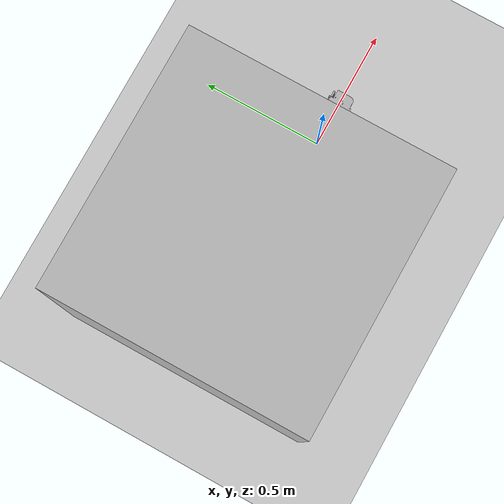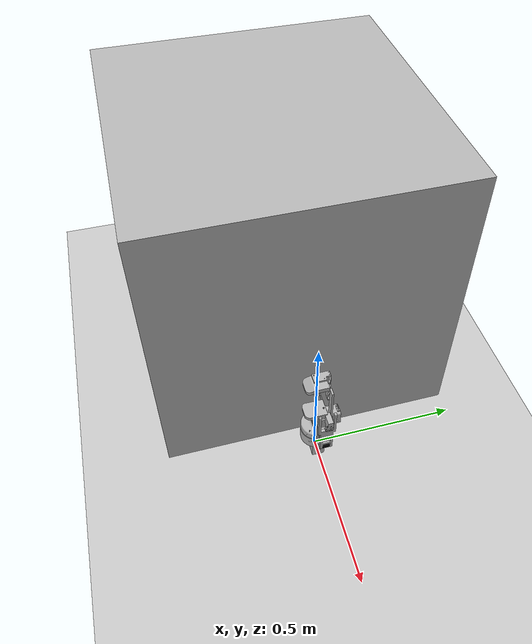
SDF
<?xml·version='1.0'?>
<sdf version='1.6'>
 <world name='default'>
  <include>
    <uri>model://sdf/sun</uri>
    <pose frame=''>0 0 10 0 0 0</pose>
  </include>
  <include>
    <uri>model://sdf/ground_plane</uri>
    <pose frame=''>0 0 0 0 0 0</pose>
  </include>
  <include>
     <uri>model://sdf/target</uri>
     <pose frame=''>-0.57 0 0.5 0 -0 0</pose>
  </include>

  <!--model name="rcm_1_5"-->
   <include>
     <uri>model://sdf/rcm_1_5</uri>
     <pose frame=''>0 0 0 0 0 0</pose>
   </include>

 </world>
</sdf>

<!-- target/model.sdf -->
<sdf version='1.6'>
  <model name='target'>
    <link name='link'>
      <inertial>
        <mass>1</mass>
        <inertia>
          <ixx>0.166667</ixx>
          <ixy>0</ixy>
          <ixz>0</ixz>
          <iyy>0.166667</iyy>
          <iyz>0</iyz>
          <izz>0.166667</izz>
        </inertia>
        <pose frame=''>0 0 0 0 -0 0</pose>
      </inertial>
      <self_collide>1</self_collide>
      <enable_wind>0</enable_wind>
      <kinematic>1</kinematic>
      <pose frame=''>0 0 0 0 -0 0</pose>
      <gravity>1</gravity>
      <visual name='visual'>
        <geometry>
          <box>
            <size>1 1 1</size>
          </box>
        </geometry>
        <material>
          <script>
            <name>Target/Image</name>
              <uri>/home/tiger/RCM_ws/src/rcm/rcm/materials/scripts</uri>
              <uri>/home/tiger/RCM_ws/src/rcm/rcm/materials/textures</uri>
          </script>
          <shader type='vertex'>
            <normal_map>__default__</normal_map>
          </shader>
        </material>
        <pose frame=''>0 0 0 0 -0 0</pose>
        <transparency>0</transparency>
        <cast_shadows>1</cast_shadows>
      </visual>
      <collision name='collision'>
        <laser_retro>0</laser_retro>
        <max_contacts>10</max_contacts>
        <pose frame=''>0 0 0 0 -0 0</pose>
        <geometry>
          <box>
            <size>1 1 1</size>
          </box>
        </geometry>
        <surface>
          <friction>
            <ode>
              <mu>1</mu>
              <mu2>1</mu2>
              <fdir1>0 0 0</fdir1>
              <slip1>0</slip1>
              <slip2>0</slip2>
            </ode>
            <torsional>
              <coefficient>1</coefficient>
              <patch_radius>0</patch_radius>
              <surface_radius>0</surface_radius>
              <use_patch_radius>1</use_patch_radius>
              <ode>
                <slip>0</slip>
              </ode>
            </torsional>
          </friction>
          <bounce>
            <restitution_coefficient>0</restitution_coefficient>
            <threshold>1e+06</threshold>
          </bounce>
          <contact>
            <collide_without_contact>0</collide_without_contact>
            <collide_without_contact_bitmask>1</collide_without_contact_bitmask>
            <collide_bitmask>1</collide_bitmask>
            <ode>
              <soft_cfm>0</soft_cfm>
              <soft_erp>0.2</soft_erp>
              <kp>1e+13</kp>
              <kd>1</kd>
              <max_vel>0.01</max_vel>
              <min_depth>0</min_depth>
            </ode>
            <bullet>
              <split_impulse>1</split_impulse>
              <split_impulse_penetration_threshold>-0.01</split_impulse_penetration_threshold>
              <soft_cfm>0</soft_cfm>
              <soft_erp>0.2</soft_erp>
              <kp>1e+13</kp>
              <kd>1</kd>
            </bullet>
          </contact>
        </surface>
      </collision>
    </link>
    <static>0</static>
    <allow_auto_disable>1</allow_auto_disable>
  </model>
</sdf>

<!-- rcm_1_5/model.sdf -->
<sdf version='1.6'>
  <model name='rcm_1_5'>
    <link name='base_link'>
      <pose frame=''>0 0 0 0 -0 0</pose>
      <inertial>
        <pose frame=''>-2e-06 -0.000157 0.053136 0 -0 0</pose>
        <mass>0.54888</mass>
        <inertia>
          <ixx>0.00051158</ixx>
          <ixy>1.3334e-09</ixy>
          <ixz>-1.4584e-09</ixz>
          <iyy>0.00064416</iyy>
          <iyz>-1.873e-09</iyz>
          <izz>0.00063919</izz>
        </inertia>
      </inertial>
      <self_collide>1</self_collide>
      <enable_wind>0</enable_wind>
      <kinematic>1</kinematic>
      <visual name='base_link_visual'>
        <pose frame=''>0 0 0 0 -0 0</pose>
        <geometry>
          <mesh>
            <scale>1 1 1</scale>
            <uri>model://meshes/base_link.STL</uri>
          </mesh>
        </geometry>
        <transparency>0</transparency>
        <cast_shadows>1</cast_shadows>
        <material>
          <emissive>0 0 0 1</emissive>
        </material>
      </visual>
      <collision name='base_link_collision'>
        <laser_retro>0</laser_retro>
        <max_contacts>10</max_contacts>
        <pose frame=''>0 0 0 0 -0 0</pose>
        <geometry>
          <mesh>
            <uri>model://meshes/base_link.STL</uri>
            <scale>1 1 1</scale>
          </mesh>
        </geometry>
        <surface>
          <friction>
            <ode>
              <mu>1</mu>
              <mu2>1</mu2>
              <fdir1>0 0 0</fdir1>
              <slip1>0</slip1>
              <slip2>0</slip2>
            </ode>
            <torsional>
              <coefficient>1</coefficient>
              <patch_radius>0</patch_radius>
              <surface_radius>0</surface_radius>
              <use_patch_radius>1</use_patch_radius>
              <ode>
                <slip>0</slip>
              </ode>
            </torsional>
          </friction>
          <bounce>
            <restitution_coefficient>0</restitution_coefficient>
            <threshold>1e+06</threshold>
          </bounce>
          <contact>
            <collide_without_contact>0</collide_without_contact>
            <collide_without_contact_bitmask>1</collide_without_contact_bitmask>
            <collide_bitmask>1</collide_bitmask>
            <ode>
              <soft_cfm>0</soft_cfm>
              <soft_erp>0.2</soft_erp>
              <kp>1e+13</kp>
              <kd>1</kd>
              <max_vel>0.01</max_vel>
              <min_depth>0</min_depth>
            </ode>
            <bullet>
              <split_impulse>1</split_impulse>
              <split_impulse_penetration_threshold>-0.01</split_impulse_penetration_threshold>
              <soft_cfm>0</soft_cfm>
              <soft_erp>0.2</soft_erp>
              <kp>1e+13</kp>
              <kd>1</kd>
            </bullet>
          </contact>
        </surface>
      </collision>
    </link>
    <link name='Link1'>
      <pose frame=''>0 0 0.098695 0 -0 0</pose>
      <inertial>
        <pose frame=''>-1e-06 0.017456 0.033231 0 -0 0</pose>
        <mass>0.34082</mass>
        <inertia>
          <ixx>0.00024163</ixx>
          <ixy>-0</ixy>
          <ixz>-0</ixz>
          <iyy>0.00025274</iyy>
          <iyz>2.92e-06</iyz>
          <izz>0.00025121</izz>
        </inertia>
      </inertial>
      <self_collide>1</self_collide>
      <enable_wind>0</enable_wind>
      <kinematic>0</kinematic>
      <gravity>1</gravity>
      <visual name='Link1_visual'>
        <pose frame=''>0 0 0 0 -0 0</pose>
        <geometry>
          <mesh>
            <scale>1 1 1</scale>
            <uri>model://meshes/Link1.STL</uri>
          </mesh>
        </geometry>
        <transparency>0</transparency>
        <cast_shadows>1</cast_shadows>
        <material>
          <emissive>0 0 0 1</emissive>
          <shader type='vertex'>
            <normal_map>__default__</normal_map>
          </shader>
        </material>
      </visual>
      <collision name='Link1_collision'>
        <laser_retro>0</laser_retro>
        <max_contacts>10</max_contacts>
        <pose frame=''>0 0 0 0 -0 0</pose>
        <geometry>
          <mesh>
            <uri>model://meshes/Link1.STL</uri>
            <scale>1 1 1</scale>
          </mesh>
        </geometry>
        <surface>
          <friction>
            <ode>
              <mu>1</mu>
              <mu2>1</mu2>
              <fdir1>0 0 0</fdir1>
              <slip1>0</slip1>
              <slip2>0</slip2>
            </ode>
            <torsional>
              <coefficient>1</coefficient>
              <patch_radius>0</patch_radius>
              <surface_radius>0</surface_radius>
              <use_patch_radius>1</use_patch_radius>
              <ode>
                <slip>0</slip>
              </ode>
            </torsional>
          </friction>
          <bounce>
            <restitution_coefficient>0</restitution_coefficient>
            <threshold>1e+06</threshold>
          </bounce>
          <contact>
            <collide_without_contact>0</collide_without_contact>
            <collide_without_contact_bitmask>1</collide_without_contact_bitmask>
            <collide_bitmask>1</collide_bitmask>
            <ode>
              <soft_cfm>0</soft_cfm>
              <soft_erp>0.2</soft_erp>
              <kp>1e+13</kp>
              <kd>1</kd>
              <max_vel>0.01</max_vel>
              <min_depth>0</min_depth>
            </ode>
            <bullet>
              <split_impulse>1</split_impulse>
              <split_impulse_penetration_threshold>-0.01</split_impulse_penetration_threshold>
              <soft_cfm>0</soft_cfm>
              <soft_erp>0.2</soft_erp>
              <kp>1e+13</kp>
              <kd>1</kd>
            </bullet>
          </contact>
        </surface>
      </collision>
    </link>
    <link name='Link2_1'>
      <pose frame=''>0 0 0.154249 -1.5708 0 0</pose>
      <inertial>
        <pose frame=''>0.055013 0 0.000347 0 -0 0</pose>
        <mass>0.0214</mass>
        <inertia>
          <ixx>0</ixx>
          <ixy>0</ixy>
          <ixz>0</ixz>
          <iyy>0</iyy>
          <iyz>0</iyz>
          <izz>0</izz>
        </inertia>
      </inertial>
      <self_collide>1</self_collide>
      <enable_wind>0</enable_wind>
      <kinematic>0</kinematic>
      <gravity>1</gravity>
      <visual name='Link2_1_visual'>
        <pose frame=''>0 0 0 0 -0 0</pose>
        <geometry>
          <mesh>
            <scale>1 1 1</scale>
            <uri>model://meshes/Link2_1.STL</uri>
          </mesh>
        </geometry>
        <transparency>0</transparency>
        <cast_shadows>1</cast_shadows>
        <material>
          <emissive>0 0 0 1</emissive>
          <shader type='vertex'>
            <normal_map>__default__</normal_map>
          </shader>
          <script>
            <name>ModelPreview_1::Link2_1::Link2_1_visual_MATERIAL_</name>
            <uri>__default__</uri>
          </script>
          <ambient>0 0 0 1</ambient>
          <diffuse>0 0 0 1</diffuse>
          <specular>0 0 0 1</specular>
        </material>
      </visual>
      <collision name='Link2_1_collision'>
        <laser_retro>0</laser_retro>
        <max_contacts>10</max_contacts>
        <pose frame=''>0 0 0 0 -0 0</pose>
        <geometry>
          <mesh>
            <uri>model://meshes/Link2_1.STL</uri>
            <scale>1 1 1</scale>
          </mesh>
        </geometry>
        <surface>
          <friction>
            <ode>
              <mu>1</mu>
              <mu2>1</mu2>
              <fdir1>0 0 0</fdir1>
              <slip1>0</slip1>
              <slip2>0</slip2>
            </ode>
            <torsional>
              <coefficient>1</coefficient>
              <patch_radius>0</patch_radius>
              <surface_radius>0</surface_radius>
              <use_patch_radius>1</use_patch_radius>
              <ode>
                <slip>0</slip>
              </ode>
            </torsional>
          </friction>
          <bounce>
            <restitution_coefficient>0</restitution_coefficient>
            <threshold>1e+06</threshold>
          </bounce>
          <contact>
            <collide_without_contact>0</collide_without_contact>
            <collide_without_contact_bitmask>1</collide_without_contact_bitmask>
            <collide_bitmask>1</collide_bitmask>
            <ode>
              <soft_cfm>0</soft_cfm>
              <soft_erp>0.2</soft_erp>
              <kp>1e+13</kp>
              <kd>1</kd>
              <max_vel>0.01</max_vel>
              <min_depth>0</min_depth>
            </ode>
            <bullet>
              <split_impulse>1</split_impulse>
              <split_impulse_penetration_threshold>-0.01</split_impulse_penetration_threshold>
              <soft_cfm>0</soft_cfm>
              <soft_erp>0.2</soft_erp>
              <kp>1e+13</kp>
              <kd>1</kd>
            </bullet>
          </contact>
        </surface>
      </collision>
    </link>
    <link name='Link2_2'>
      <pose frame=''>0 0 0.194249 -1.5708 0 0</pose>
      <inertial>
        <pose frame=''>0.061889 0 -0.0001 0 -0 0</pose>
        <mass>0.0214</mass>
        <inertia>
          <ixx>4.29e-06</ixx>
          <ixy>0</ixy>
          <ixz>0</ixz>
          <iyy>4.646e-05</iyy>
          <iyz>0</iyz>
          <izz>4.364e-05</izz>
        </inertia>
      </inertial>
      <self_collide>1</self_collide>
      <enable_wind>0</enable_wind>
      <kinematic>0</kinematic>
      <gravity>1</gravity>
      <visual name='Link2_2_visual'>
        <pose frame=''>0 0 0 0 -0 0</pose>
        <geometry>
          <mesh>
            <scale>1 1 1</scale>
            <uri>model://meshes/Link2_2.STL</uri>
          </mesh>
        </geometry>
        <transparency>0</transparency>
        <cast_shadows>1</cast_shadows>
        <material>
          <emissive>0 0 0 1</emissive>
          <shader type='vertex'>
            <normal_map>__default__</normal_map>
          </shader>
        </material>
      </visual>
      <collision name='Link2_2_collision'>
        <laser_retro>0</laser_retro>
        <max_contacts>10</max_contacts>
        <pose frame=''>0 0 0 0 -0 0</pose>
        <geometry>
          <mesh>
            <uri>model://meshes/Link2_2.STL</uri>
            <scale>1 1 1</scale>
          </mesh>
        </geometry>
        <surface>
          <friction>
            <ode>
              <mu>1</mu>
              <mu2>1</mu2>
              <fdir1>0 0 0</fdir1>
              <slip1>0</slip1>
              <slip2>0</slip2>
            </ode>
            <torsional>
              <coefficient>1</coefficient>
              <patch_radius>0</patch_radius>
              <surface_radius>0</surface_radius>
              <use_patch_radius>1</use_patch_radius>
              <ode>
                <slip>0</slip>
              </ode>
            </torsional>
          </friction>
          <bounce>
            <restitution_coefficient>0</restitution_coefficient>
            <threshold>1e+06</threshold>
          </bounce>
          <contact>
            <collide_without_contact>0</collide_without_contact>
            <collide_without_contact_bitmask>1</collide_without_contact_bitmask>
            <collide_bitmask>1</collide_bitmask>
            <ode>
              <soft_cfm>0</soft_cfm>
              <soft_erp>0.2</soft_erp>
              <kp>1e+13</kp>
              <kd>1</kd>
              <max_vel>0.01</max_vel>
              <min_depth>0</min_depth>
            </ode>
            <bullet>
              <split_impulse>1</split_impulse>
              <split_impulse_penetration_threshold>-0.01</split_impulse_penetration_threshold>
              <soft_cfm>0</soft_cfm>
              <soft_erp>0.2</soft_erp>
              <kp>1e+13</kp>
              <kd>1</kd>
            </bullet>
          </contact>
        </surface>
      </collision>
    </link>
    <link name='Link3_1'>
      <pose frame=''>0.072 0 0.154249 2.31621 -1.57079 2.39617</pose>
      <inertial>
        <pose frame=''>0.078951 0 0 0 -0 0</pose>
        <mass>0.02395</mass>
        <inertia>
          <ixx>1.47e-05</ixx>
          <ixy>0</ixy>
          <ixz>0</ixz>
          <iyy>0.00010124</iyy>
          <iyz>0</iyz>
          <izz>8.727e-05</izz>
        </inertia>
      </inertial>
      <self_collide>1</self_collide>
      <enable_wind>0</enable_wind>
      <kinematic>0</kinematic>
      <gravity>1</gravity>
      <visual name='Link3_1_visual'>
        <pose frame=''>0 0 0 0 -0 0</pose>
        <geometry>
          <mesh>
            <scale>1 1 1</scale>
            <uri>model://meshes/Link3_1.STL</uri>
          </mesh>
        </geometry>
        <transparency>0</transparency>
        <cast_shadows>1</cast_shadows>
        <material>
          <emissive>0 0 0 1</emissive>
          <shader type='vertex'>
            <normal_map>__default__</normal_map>
          </shader>
        </material>
      </visual>
      <collision name='Link3_1_collision'>
        <laser_retro>0</laser_retro>
        <max_contacts>10</max_contacts>
        <pose frame=''>0 0 0 0 -0 0</pose>
        <geometry>
          <mesh>
            <uri>model://meshes/Link3_1.STL</uri>
            <scale>1 1 1</scale>
          </mesh>
        </geometry>
        <surface>
          <friction>
            <ode>
              <mu>1</mu>
              <mu2>1</mu2>
              <fdir1>0 0 0</fdir1>
              <slip1>0</slip1>
              <slip2>0</slip2>
            </ode>
            <torsional>
              <coefficient>1</coefficient>
              <patch_radius>0</patch_radius>
              <surface_radius>0</surface_radius>
              <use_patch_radius>1</use_patch_radius>
              <ode>
                <slip>0</slip>
              </ode>
            </torsional>
          </friction>
          <bounce>
            <restitution_coefficient>0</restitution_coefficient>
            <threshold>1e+06</threshold>
          </bounce>
          <contact>
            <collide_without_contact>0</collide_without_contact>
            <collide_without_contact_bitmask>1</collide_without_contact_bitmask>
            <collide_bitmask>1</collide_bitmask>
            <ode>
              <soft_cfm>0</soft_cfm>
              <soft_erp>0.2</soft_erp>
              <kp>1e+13</kp>
              <kd>1</kd>
              <max_vel>0.01</max_vel>
              <min_depth>0</min_depth>
            </ode>
            <bullet>
              <split_impulse>1</split_impulse>
              <split_impulse_penetration_threshold>-0.01</split_impulse_penetration_threshold>
              <soft_cfm>0</soft_cfm>
              <soft_erp>0.2</soft_erp>
              <kp>1e+13</kp>
              <kd>1</kd>
            </bullet>
          </contact>
        </surface>
      </collision>
    </link>
    <link name='Link3_2'>
      <pose frame=''>0.112 0 0.154249 2.31621 -1.57079 2.39617</pose>
      <inertial>
        <pose frame=''>0.078951 0 0 0 -0 0</pose>
        <mass>0.02395</mass>
        <inertia>
          <ixx>1.47e-05</ixx>
          <ixy>0</ixy>
          <ixz>0</ixz>
          <iyy>0.00010124</iyy>
          <iyz>0</iyz>
          <izz>8.727e-05</izz>
        </inertia>
      </inertial>
      <self_collide>1</self_collide>
      <enable_wind>0</enable_wind>
      <kinematic>0</kinematic>
      <gravity>1</gravity>
      <visual name='Link3_2_visual'>
        <pose frame=''>0 0 0 0 -0 0</pose>
        <geometry>
          <mesh>
            <scale>1 1 1</scale>
            <uri>model://meshes/Link3_2.STL</uri>
          </mesh>
        </geometry>
        <transparency>0</transparency>
        <cast_shadows>1</cast_shadows>
        <material>
          <emissive>0 0 0 1</emissive>
          <shader type='vertex'>
            <normal_map>__default__</normal_map>
          </shader>
        </material>
      </visual>
      <collision name='Link3_2_collision'>
        <laser_retro>0</laser_retro>
        <max_contacts>10</max_contacts>
        <pose frame=''>0 0 0 0 -0 0</pose>
        <geometry>
          <mesh>
            <uri>model://meshes/Link3_2.STL</uri>
            <scale>1 1 1</scale>
          </mesh>
        </geometry>
        <surface>
          <friction>
            <ode>
              <mu>1</mu>
              <mu2>1</mu2>
              <fdir1>0 0 0</fdir1>
              <slip1>0</slip1>
              <slip2>0</slip2>
            </ode>
            <torsional>
              <coefficient>1</coefficient>
              <patch_radius>0</patch_radius>
              <surface_radius>0</surface_radius>
              <use_patch_radius>1</use_patch_radius>
              <ode>
                <slip>0</slip>
              </ode>
            </torsional>
          </friction>
          <bounce>
            <restitution_coefficient>0</restitution_coefficient>
            <threshold>1e+06</threshold>
          </bounce>
          <contact>
            <collide_without_contact>0</collide_without_contact>
            <collide_without_contact_bitmask>1</collide_without_contact_bitmask>
            <collide_bitmask>1</collide_bitmask>
            <ode>
              <soft_cfm>0</soft_cfm>
              <soft_erp>0.2</soft_erp>
              <kp>1e+13</kp>
              <kd>1</kd>
              <max_vel>0.01</max_vel>
              <min_depth>0</min_depth>
            </ode>
            <bullet>
              <split_impulse>1</split_impulse>
              <split_impulse_penetration_threshold>-0.01</split_impulse_penetration_threshold>
              <soft_cfm>0</soft_cfm>
              <soft_erp>0.2</soft_erp>
              <kp>1e+13</kp>
              <kd>1</kd>
            </bullet>
          </contact>
        </surface>
      </collision>
    </link>
    <link name='Link_E'>
      <pose frame=''>0.127 0 0.284749 -3.14148 -1.53809 3.14148</pose>
      <inertial>
        <pose frame=''>0.028599 0.000461 0.00729 0 -0 0</pose>
        <mass>0.047866</mass>
        <inertia>
          <ixx>2.08e-06</ixx>
          <ixy>1e-08</ixy>
          <ixz>0</ixz>
          <iyy>2.79e-06</iyy>
          <iyz>1e-08</iyz>
          <izz>1.87e-06</izz>
        </inertia>
      </inertial>
      <self_collide>1</self_collide>
      <enable_wind>0</enable_wind>
      <kinematic>0</kinematic>
      <gravity>1</gravity>
      <visual name='Link_E_visual'>
        <pose frame=''>0 0 0 0 -0 0</pose>
        <geometry>
          <mesh>
            <scale>1 1 1</scale>
            <uri>model://meshes/Link_E.STL</uri>
          </mesh>
        </geometry>
        <transparency>0</transparency>
        <cast_shadows>1</cast_shadows>
        <material>
          <emissive>0 0 0 1</emissive>
          <shader type='vertex'>
            <normal_map>__default__</normal_map>
          </shader>
        </material>
      </visual>
      <collision name='Link_E_collision'>
        <laser_retro>0</laser_retro>
        <max_contacts>10</max_contacts>
        <pose frame=''>0 0 0 0 -0 0</pose>
        <geometry>
          <mesh>
            <uri>model://meshes/Link_E.STL</uri>
            <scale>1 1 1</scale>
          </mesh>
        </geometry>
        <surface>
          <friction>
            <ode>
              <mu>1</mu>
              <mu2>1</mu2>
              <fdir1>0 0 0</fdir1>
              <slip1>0</slip1>
              <slip2>0</slip2>
            </ode>
            <torsional>
              <coefficient>1</coefficient>
              <patch_radius>0</patch_radius>
              <surface_radius>0</surface_radius>
              <use_patch_radius>1</use_patch_radius>
              <ode>
                <slip>0</slip>
              </ode>
            </torsional>
          </friction>
          <bounce>
            <restitution_coefficient>0</restitution_coefficient>
            <threshold>1e+06</threshold>
          </bounce>
          <contact>
            <collide_without_contact>0</collide_without_contact>
            <collide_without_contact_bitmask>1</collide_without_contact_bitmask>
            <collide_bitmask>1</collide_bitmask>
            <ode>
              <soft_cfm>0</soft_cfm>
              <soft_erp>0.2</soft_erp>
              <kp>1e+13</kp>
              <kd>1</kd>
              <max_vel>0.01</max_vel>
              <min_depth>0</min_depth>
            </ode>
            <bullet>
              <split_impulse>1</split_impulse>
              <split_impulse_penetration_threshold>-0.01</split_impulse_penetration_threshold>
              <soft_cfm>0</soft_cfm>
              <soft_erp>0.2</soft_erp>
              <kp>1e+13</kp>
              <kd>1</kd>
            </bullet>
          </contact>
        </surface>
      </collision>
    </link>
    <link name='Link_ee'>
      <pose frame=''>0.111999 1e-06 0.321749 1.5708 7e-06 -3.14159</pose>
      <inertial>
        <pose frame=''>-0.001995 -0.022493 0.000504 0 -0 0</pose>
        <mass>0.276133</mass>
        <inertia>
          <ixx>1.741e-05</ixx>
          <ixy>0</ixy>
          <ixz>0</ixz>
          <iyy>9.606e-05</iyy>
          <iyz>0</iyz>
          <izz>9.407e-05</izz>
        </inertia>
      </inertial>
      <self_collide>1</self_collide>
      <enable_wind>0</enable_wind>
      <kinematic>0</kinematic>
      <gravity>1</gravity>
      <visual name='Link_ee_visual'>
        <pose frame=''>0 0 0 0 -0 0</pose>
        <geometry>
          <mesh>
            <scale>1 1 1</scale>
            <uri>model://meshes/Link_ee.STL</uri>
          </mesh>
        </geometry>
        <transparency>0</transparency>
        <cast_shadows>1</cast_shadows>
        <material>
          <emissive>0 0 0 1</emissive>
          <shader type='vertex'>
            <normal_map>__default__</normal_map>
          </shader>
        </material>
      </visual>
      <collision name='Link_ee_collision'>
        <laser_retro>0</laser_retro>
        <max_contacts>10</max_contacts>
        <pose frame=''>0 0 0 0 -0 0</pose>
        <geometry>
          <mesh>
            <uri>model://meshes/Link_ee.STL</uri>
            <scale>1 1 1</scale>
          </mesh>
        </geometry>
        <surface>
          <friction>
            <ode>
              <mu>1</mu>
              <mu2>1</mu2>
              <fdir1>0 0 0</fdir1>
              <slip1>0</slip1>
              <slip2>0</slip2>
            </ode>
            <torsional>
              <coefficient>1</coefficient>
              <patch_radius>0</patch_radius>
              <surface_radius>0</surface_radius>
              <use_patch_radius>1</use_patch_radius>
              <ode>
                <slip>0</slip>
              </ode>
            </torsional>
          </friction>
          <bounce>
            <restitution_coefficient>0</restitution_coefficient>
            <threshold>1e+06</threshold>
          </bounce>
          <contact>
            <collide_without_contact>0</collide_without_contact>
            <collide_without_contact_bitmask>1</collide_without_contact_bitmask>
            <collide_bitmask>1</collide_bitmask>
            <ode>
              <soft_cfm>0</soft_cfm>
              <soft_erp>0.2</soft_erp>
              <kp>1e+13</kp>
              <kd>1</kd>
              <max_vel>0.01</max_vel>
              <min_depth>0</min_depth>
            </ode>
            <bullet>
              <split_impulse>1</split_impulse>
              <split_impulse_penetration_threshold>-0.01</split_impulse_penetration_threshold>
              <soft_cfm>0</soft_cfm>
              <soft_erp>0.2</soft_erp>
              <kp>1e+13</kp>
              <kd>1</kd>
            </bullet>
          </contact>
        </surface>
      </collision>
      <sensor name='camera' type='depth'>
        <pose frame=''>0.083 0.016 0 -1.57 0 0</pose>
        <always_on>1</always_on>
        <update_rate>30</update_rate>
        <visualize>1</visualize>
        <camera name='__default__'>
          <horizontal_fov>2.32</horizontal_fov>
          <image>
            <width>1280</width>
            <height>720</height>
          </image>
          <clip>
            <near>0.01</near>
            <far>100</far>
          </clip>
          <depth_camera>
            <output>1</output>
          </depth_camera>
        </camera>
        <plugin name='camera_plugin' filename='libgazebo_ros_openni_kinect.so'>
          <baseline>0.2</baseline>
          <alwaysOn>1</alwaysOn>
          <updateRate>0.0</updateRate>
          <cameraName>camera_ir</cameraName>
          <imageTopicName>/camera/color/image_raw</imageTopicName>
          <cameraInfoTopicName>/camera/color/camera_info</cameraInfoTopicName>
          <depthImageTopicName>/camera/depth/image_raw</depthImageTopicName>
          <depthImageCameraInfoTopicName>/camera/depth/camera_info</depthImageCameraInfoTopicName>
          <pointCloudTopicName>/camera/depth/points</pointCloudTopicName>
          <frameName>camera_link</frameName>
          <pointCloudCutoff>0.01</pointCloudCutoff>
          <pointCloudCutoffMax>100</pointCloudCutoffMax>
          <distortionK1>0</distortionK1>
          <distortionK2>0</distortionK2>
          <distortionK3>0</distortionK3>
          <distortionT1>0</distortionT1>
          <distortionT2>0</distortionT2>
          <CxPrime>0</CxPrime>
          <Cx>0</Cx>
          <Cy>0</Cy>
          <focalLength>0</focalLength>
          <hackBaseline>0</hackBaseline>
        </plugin>
      </sensor>
  </link>
    <joint name='Link1_joint' type='revolute'>
      <parent>base_link</parent>
      <child>Link1</child>
      <pose frame=''>0 0 0 0 -0 0</pose>
      <axis>
        <xyz>0 0 1</xyz>
        <use_parent_model_frame>0</use_parent_model_frame>
        <limit>
          <lower>-3.14</lower>
          <upper>3.14</upper>
          <effort>10</effort>
          <velocity>10</velocity>
        </limit>
        <dynamics>
          <spring_reference>0</spring_reference>
          <spring_stiffness>0</spring_stiffness>
          <damping>0</damping>
          <friction>0</friction>
        </dynamics>
      </axis>
      <physics>
        <ode>
          <limit>
            <cfm>0</cfm>
            <erp>0.2</erp>
          </limit>
          <suspension>
            <cfm>0</cfm>
            <erp>0.2</erp>
          </suspension>
        </ode>
      </physics>
    </joint>
    <joint name='Link2_1_joint' type='revolute'>
      <parent>Link1</parent>
      <child>Link2_1</child>
      <pose frame=''>0 0 0 0 -0 0</pose>
      <axis>
        <xyz>0 0 1</xyz>
        <use_parent_model_frame>0</use_parent_model_frame>
        <limit>
          <lower>-0.43</lower>
          <upper>0.43</upper>
          <effort>10</effort>
          <velocity>10</velocity>
        </limit>
        <dynamics>
          <spring_reference>0</spring_reference>
          <spring_stiffness>0</spring_stiffness>
          <damping>0</damping>
          <friction>0</friction>
        </dynamics>
      </axis>
      <physics>
        <ode>
          <limit>
            <cfm>0</cfm>
            <erp>0.2</erp>
          </limit>
          <suspension>
            <cfm>0</cfm>
            <erp>0.2</erp>
          </suspension>
        </ode>
      </physics>
    </joint>
    <joint name='Link2_2_joint' type='revolute'>
      <parent>Link1</parent>
      <child>Link2_2</child>
      <pose frame=''>0 0 0 0 -0 0</pose>
      <axis>
        <xyz>0 0 1</xyz>
        <use_parent_model_frame>0</use_parent_model_frame>
        <limit>
          <lower>-10</lower>
          <upper>10</upper>
          <effort>10</effort>
          <velocity>10</velocity>
        </limit>
        <dynamics>
          <spring_reference>0</spring_reference>
          <spring_stiffness>0</spring_stiffness>
          <damping>0</damping>
          <friction>0</friction>
        </dynamics>
      </axis>
      <physics>
        <ode>
          <limit>
            <cfm>0</cfm>
            <erp>0.2</erp>
          </limit>
          <suspension>
            <cfm>0</cfm>
            <erp>0.2</erp>
          </suspension>
        </ode>
      </physics>
    </joint>
    <joint name='Link3_1_joint1' type='revolute'>
      <parent>Link2_1</parent>
      <child>Link3_1</child>
      <pose frame=''>0 0 0 0 -0 0</pose>
      <axis>
        <xyz>0 0 1</xyz>
        <use_parent_model_frame>0</use_parent_model_frame>
        <limit>
          <lower>-10</lower>
          <upper>10</upper>
          <effort>10</effort>
          <velocity>10</velocity>
        </limit>
        <dynamics>
          <spring_reference>0</spring_reference>
          <spring_stiffness>0</spring_stiffness>
          <damping>0</damping>
          <friction>0</friction>
        </dynamics>
      </axis>
      <physics>
        <ode>
          <limit>
            <cfm>0</cfm>
            <erp>0.2</erp>
          </limit>
          <suspension>
            <cfm>0</cfm>
            <erp>0.2</erp>
          </suspension>
        </ode>
      </physics>
    </joint>
    <joint name='Link3_1_joint2' type='revolute'>
      <parent>Link2_2</parent>
      <child>Link3_1</child>
      <pose frame=''>0.04 0 0 0 -0 0</pose>
      <axis>
        <xyz>0 0 1</xyz>
        <use_parent_model_frame>0</use_parent_model_frame>
        <limit>
          <lower>-1.79769e+308</lower>
          <upper>1.79769e+308</upper>
          <effort>-1</effort>
          <velocity>-1</velocity>
        </limit>
        <dynamics>
          <spring_reference>0</spring_reference>
          <spring_stiffness>0</spring_stiffness>
          <damping>0</damping>
          <friction>0</friction>
        </dynamics>
      </axis>
      <physics>
        <ode>
          <limit>
            <cfm>0</cfm>
            <erp>0.2</erp>
          </limit>
          <suspension>
            <cfm>0</cfm>
            <erp>0.2</erp>
          </suspension>
        </ode>
      </physics>
    </joint>
    <joint name='Link3_2_joint1' type='revolute'>
      <parent>Link2_1</parent>
      <child>Link3_2</child>
      <pose frame=''>0 0 0 0 -0 0</pose>
      <axis>
        <xyz>0 0 1</xyz>
        <use_parent_model_frame>0</use_parent_model_frame>
        <limit>
          <lower>-10</lower>
          <upper>10</upper>
          <effort>10</effort>
          <velocity>10</velocity>
        </limit>
        <dynamics>
          <spring_reference>0</spring_reference>
          <spring_stiffness>0</spring_stiffness>
          <damping>0</damping>
          <friction>0</friction>
        </dynamics>
      </axis>
      <physics>
        <ode>
          <limit>
            <cfm>0</cfm>
            <erp>0.2</erp>
          </limit>
          <suspension>
            <cfm>0</cfm>
            <erp>0.2</erp>
          </suspension>
        </ode>
      </physics>
    </joint>
    <joint name='Link3_2_joint2' type='revolute'>
      <parent>Link2_2</parent>
      <child>Link3_2</child>
      <pose frame=''>0.04 0 0 0 -0 0</pose>
      <axis>
        <xyz>0 0 1</xyz>
        <use_parent_model_frame>0</use_parent_model_frame>
        <limit>
          <lower>-1.79769e+308</lower>
          <upper>1.79769e+308</upper>
          <effort>-1</effort>
          <velocity>-1</velocity>
        </limit>
        <dynamics>
          <spring_reference>0</spring_reference>
          <spring_stiffness>0</spring_stiffness>
          <damping>0</damping>
          <friction>0</friction>
        </dynamics>
      </axis>
      <physics>
        <ode>
          <limit>
            <cfm>0</cfm>
            <erp>0.2</erp>
          </limit>
          <suspension>
            <cfm>0</cfm>
            <erp>0.2</erp>
          </suspension>
        </ode>
      </physics>
    </joint>
    <joint name='Link_E_joint' type='prismatic'>
      <parent>Link_ee</parent>
      <child>Link_E</child>
      <pose frame=''>0 0 0 0 -0 1.57</pose>
      <axis>
        <xyz>0 0 1</xyz>
        <use_parent_model_frame>0</use_parent_model_frame>
        <limit>
          <lower>0</lower>
          <upper>0.1</upper>
          <effort>10</effort>
          <velocity>10</velocity>
        </limit>
        <dynamics>
          <spring_reference>0</spring_reference>
          <spring_stiffness>0</spring_stiffness>
          <damping>0</damping>
          <friction>0</friction>
        </dynamics>
      </axis>
      <physics>
        <ode>
          <limit>
            <cfm>0</cfm>
            <erp>0.2</erp>
          </limit>
          <suspension>
            <cfm>0</cfm>
            <erp>0.2</erp>
          </suspension>
        </ode>
      </physics>
    </joint>
    <joint name='Link_ee_joint1' type='revolute'>
      <parent>Link3_1</parent>
      <child>Link_ee</child>
      <pose frame=''>0.04 0 0 0 -0 0</pose>
      <axis>
        <xyz>0 0 1</xyz>
        <use_parent_model_frame>0</use_parent_model_frame>
        <limit>
          <lower>-1.79769e+308</lower>
          <upper>1.79769e+308</upper>
          <effort>-1</effort>
          <velocity>-1</velocity>
        </limit>
        <dynamics>
          <spring_reference>0</spring_reference>
          <spring_stiffness>0</spring_stiffness>
          <damping>0</damping>
          <friction>0</friction>
        </dynamics>
      </axis>
      <physics>
        <ode>
          <limit>
            <cfm>0</cfm>
            <erp>0.2</erp>
          </limit>
          <suspension>
            <cfm>0</cfm>
            <erp>0.2</erp>
          </suspension>
        </ode>
      </physics>
    </joint>
    <joint name='Link_ee_joint2' type='revolute'>
      <parent>Link3_2</parent>
      <child>Link_ee</child>
      <pose frame=''>0 0 0 0 -0 0</pose>
      <axis>
        <xyz>0 0 1</xyz>
        <use_parent_model_frame>0</use_parent_model_frame>
        <limit>
          <lower>-1.79769e+308</lower>
          <upper>1.79769e+308</upper>
          <effort>-1</effort>
          <velocity>-1</velocity>
        </limit>
        <dynamics>
          <spring_reference>0</spring_reference>
          <spring_stiffness>0</spring_stiffness>
          <damping>0</damping>
          <friction>0</friction>
        </dynamics>
      </axis>
      <physics>
        <ode>
          <limit>
            <cfm>0</cfm>
            <erp>0.2</erp>
          </limit>
          <suspension>
            <cfm>0</cfm>
            <erp>0.2</erp>
          </suspension>
        </ode>
      </physics>
    </joint>
    <static>0</static>
    <allow_auto_disable>0</allow_auto_disable>
   <plugin name="joy_control" filename="libjoy_control.so"/>
  </model>
</sdf>
